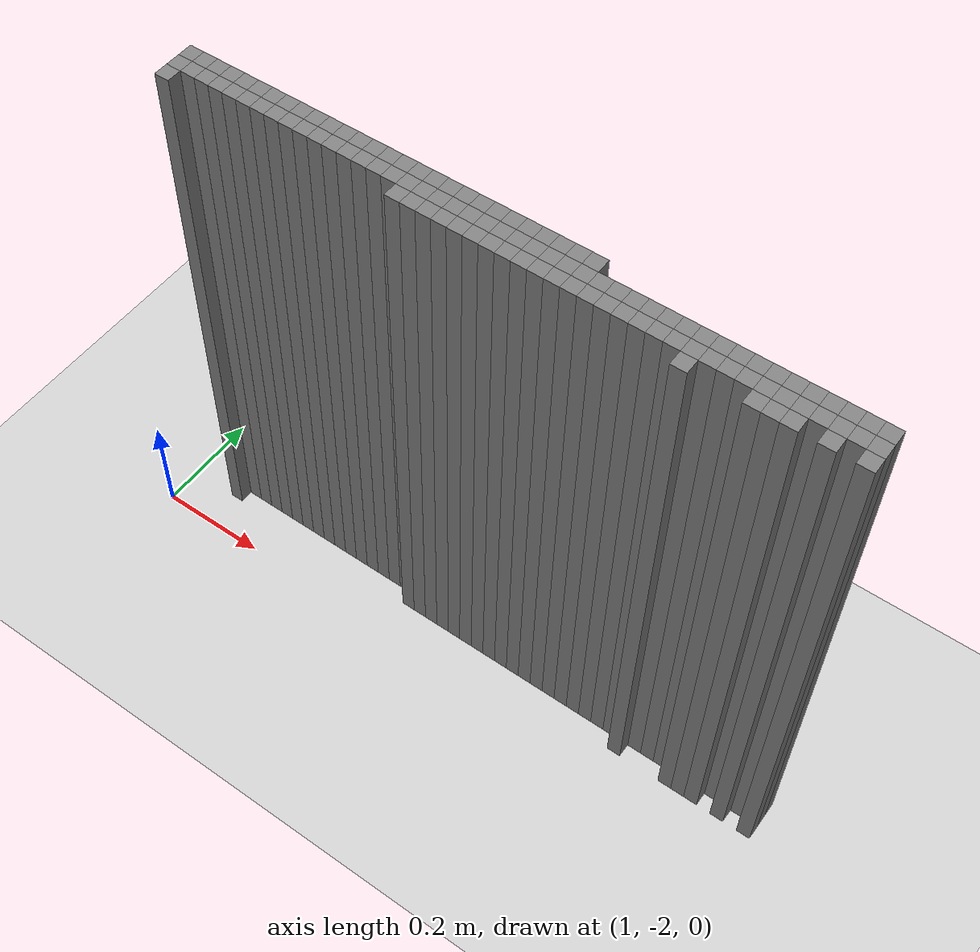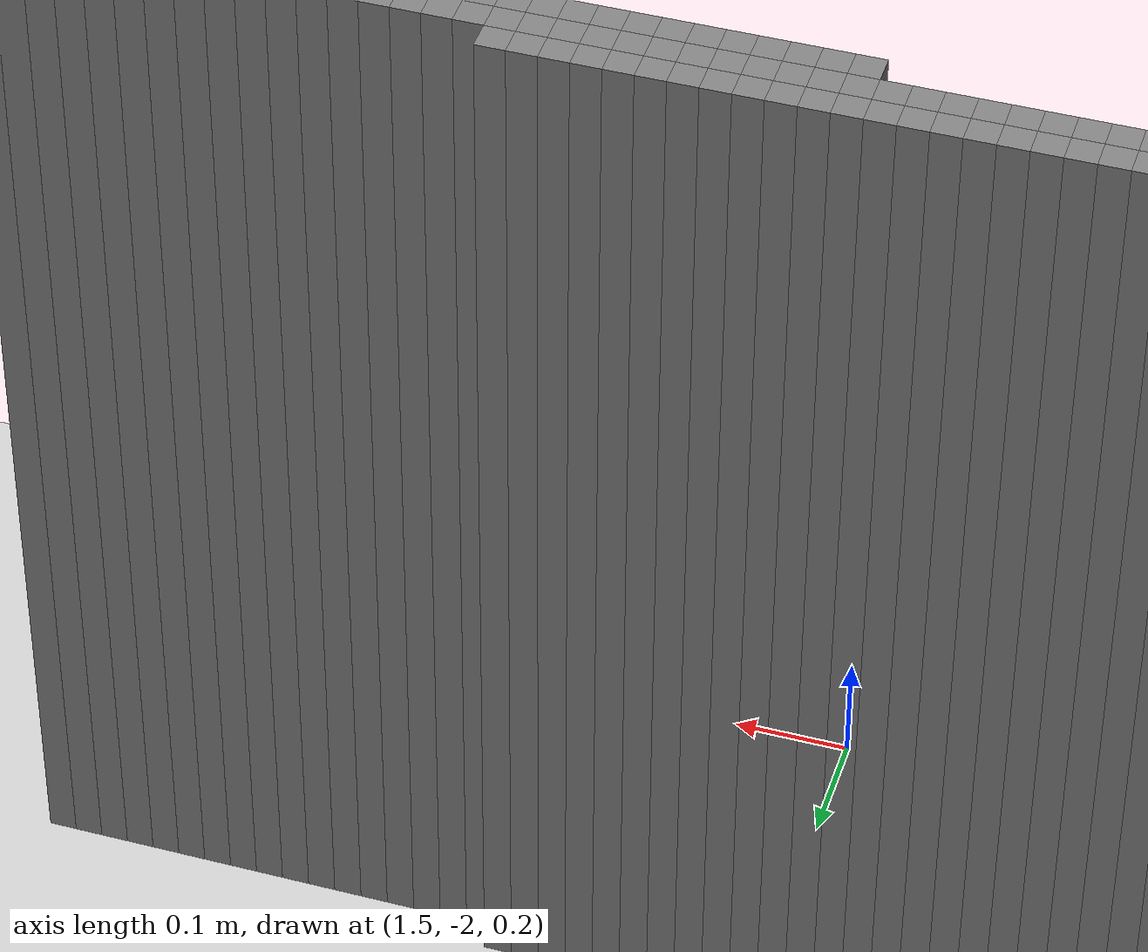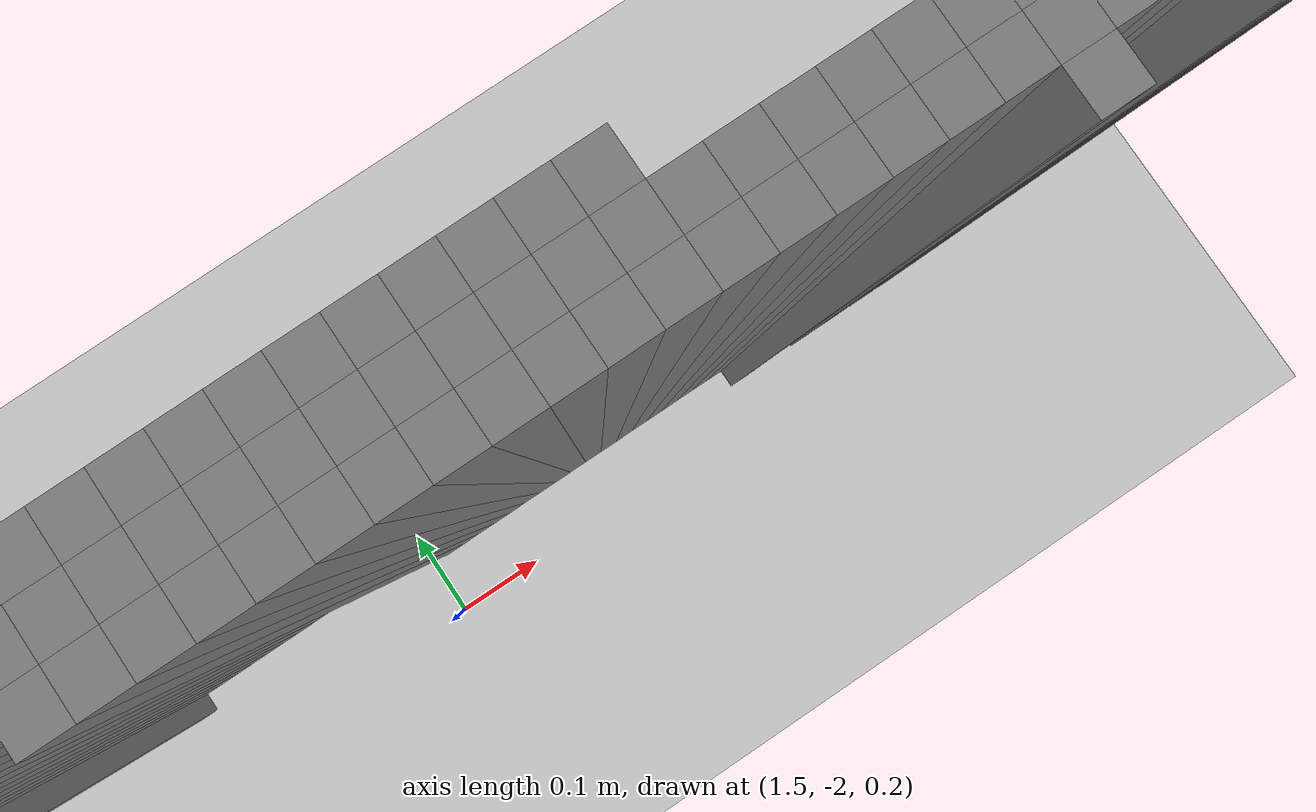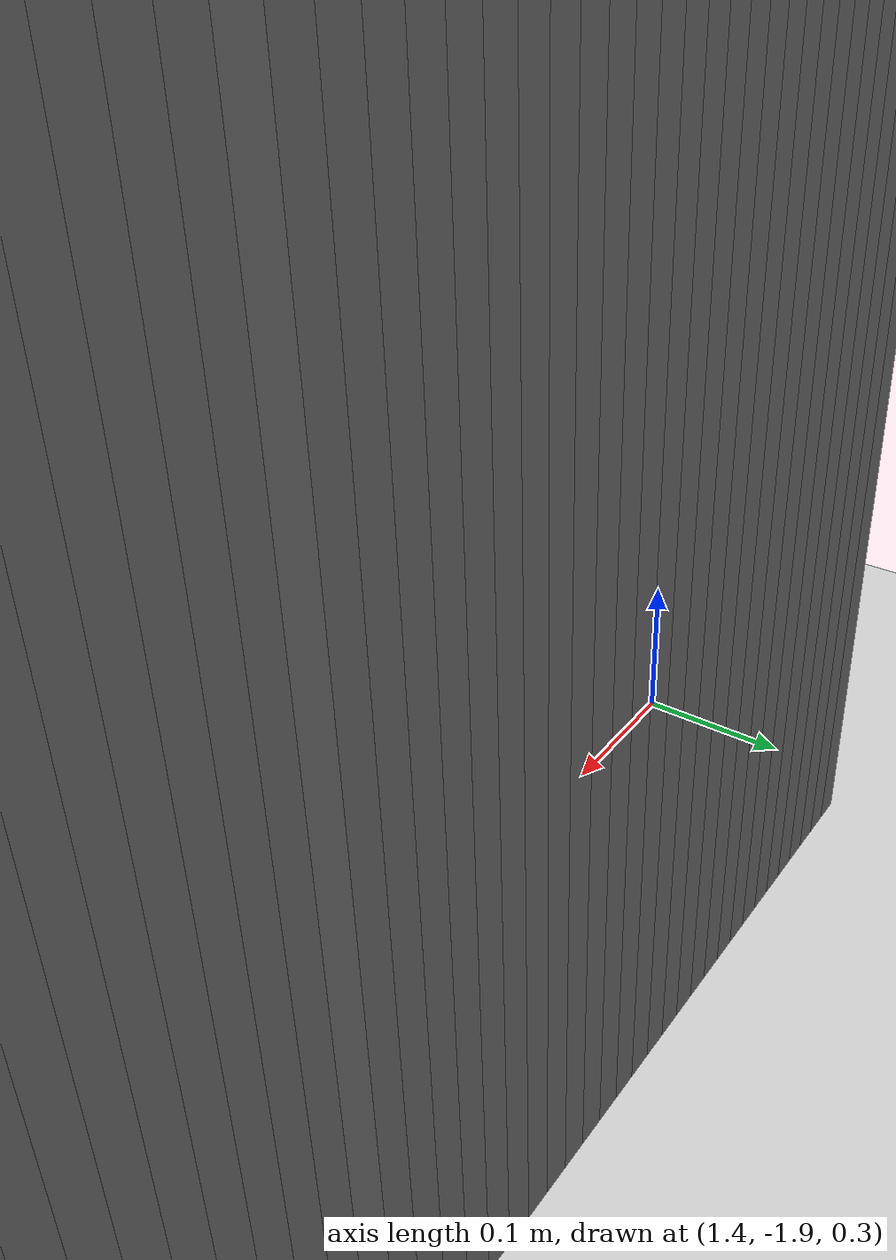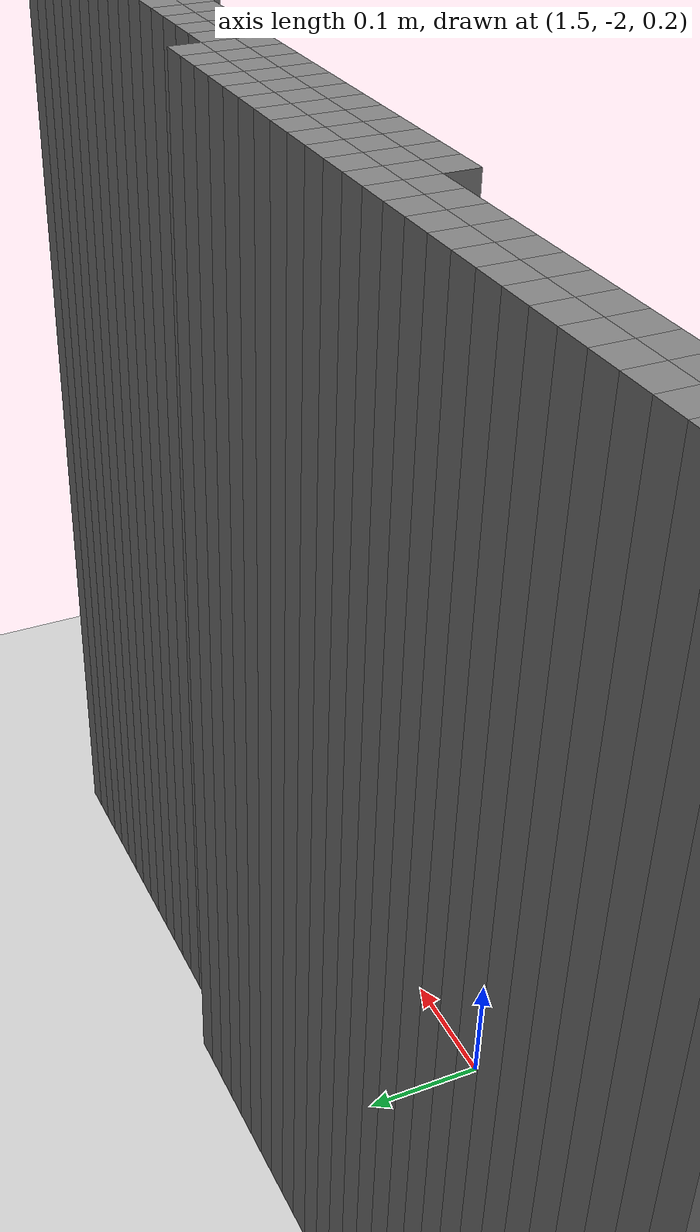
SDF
<sdf version="1.6">
 <world name="map_world">
  <include><uri>model://ground_plane</uri></include>
  <include><uri>model://sun</uri></include>
  <model name="obs_137_124">
   <static>true</static>
   <link name="link">
    <collision name="collision"><geometry><box><size>0.025 0.025 1.0</size></box></geometry></collision>
    <visual name="visual">
     <geometry><box><size>0.025 0.025 1.0</size></box></geometry>
     <material><ambient>0.5 0.5 0.5 1</ambient></material>
    </visual>
   </link>
   <pose>1.0987650000000002 -1.869071 0.5 0 0 0</pose>
  </model>
  <model name="obs_138_124">
   <static>true</static>
   <link name="link">
    <collision name="collision"><geometry><box><size>0.025 0.025 1.0</size></box></geometry></collision>
    <visual name="visual">
     <geometry><box><size>0.025 0.025 1.0</size></box></geometry>
     <material><ambient>0.5 0.5 0.5 1</ambient></material>
    </visual>
   </link>
   <pose>1.1237650000000001 -1.869071 0.5 0 0 0</pose>
  </model>
  <model name="obs_139_124">
   <static>true</static>
   <link name="link">
    <collision name="collision"><geometry><box><size>0.025 0.025 1.0</size></box></geometry></collision>
    <visual name="visual">
     <geometry><box><size>0.025 0.025 1.0</size></box></geometry>
     <material><ambient>0.5 0.5 0.5 1</ambient></material>
    </visual>
   </link>
   <pose>1.148765 -1.869071 0.5 0 0 0</pose>
  </model>
  <model name="obs_140_124">
   <static>true</static>
   <link name="link">
    <collision name="collision"><geometry><box><size>0.025 0.025 1.0</size></box></geometry></collision>
    <visual name="visual">
     <geometry><box><size>0.025 0.025 1.0</size></box></geometry>
     <material><ambient>0.5 0.5 0.5 1</ambient></material>
    </visual>
   </link>
   <pose>1.173765 -1.869071 0.5 0 0 0</pose>
  </model>
  <model name="obs_141_124">
   <static>true</static>
   <link name="link">
    <collision name="collision"><geometry><box><size>0.025 0.025 1.0</size></box></geometry></collision>
    <visual name="visual">
     <geometry><box><size>0.025 0.025 1.0</size></box></geometry>
     <material><ambient>0.5 0.5 0.5 1</ambient></material>
    </visual>
   </link>
   <pose>1.1987650000000003 -1.869071 0.5 0 0 0</pose>
  </model>
  <model name="obs_142_124">
   <static>true</static>
   <link name="link">
    <collision name="collision"><geometry><box><size>0.025 0.025 1.0</size></box></geometry></collision>
    <visual name="visual">
     <geometry><box><size>0.025 0.025 1.0</size></box></geometry>
     <material><ambient>0.5 0.5 0.5 1</ambient></material>
    </visual>
   </link>
   <pose>1.2237650000000002 -1.869071 0.5 0 0 0</pose>
  </model>
  <model name="obs_143_124">
   <static>true</static>
   <link name="link">
    <collision name="collision"><geometry><box><size>0.025 0.025 1.0</size></box></geometry></collision>
    <visual name="visual">
     <geometry><box><size>0.025 0.025 1.0</size></box></geometry>
     <material><ambient>0.5 0.5 0.5 1</ambient></material>
    </visual>
   </link>
   <pose>1.2487650000000001 -1.869071 0.5 0 0 0</pose>
  </model>
  <model name="obs_144_124">
   <static>true</static>
   <link name="link">
    <collision name="collision"><geometry><box><size>0.025 0.025 1.0</size></box></geometry></collision>
    <visual name="visual">
     <geometry><box><size>0.025 0.025 1.0</size></box></geometry>
     <material><ambient>0.5 0.5 0.5 1</ambient></material>
    </visual>
   </link>
   <pose>1.273765 -1.869071 0.5 0 0 0</pose>
  </model>
  <model name="obs_145_124">
   <static>true</static>
   <link name="link">
    <collision name="collision"><geometry><box><size>0.025 0.025 1.0</size></box></geometry></collision>
    <visual name="visual">
     <geometry><box><size>0.025 0.025 1.0</size></box></geometry>
     <material><ambient>0.5 0.5 0.5 1</ambient></material>
    </visual>
   </link>
   <pose>1.298765 -1.869071 0.5 0 0 0</pose>
  </model>
  <model name="obs_146_124">
   <static>true</static>
   <link name="link">
    <collision name="collision"><geometry><box><size>0.025 0.025 1.0</size></box></geometry></collision>
    <visual name="visual">
     <geometry><box><size>0.025 0.025 1.0</size></box></geometry>
     <material><ambient>0.5 0.5 0.5 1</ambient></material>
    </visual>
   </link>
   <pose>1.3237650000000003 -1.869071 0.5 0 0 0</pose>
  </model>
  <model name="obs_147_124">
   <static>true</static>
   <link name="link">
    <collision name="collision"><geometry><box><size>0.025 0.025 1.0</size></box></geometry></collision>
    <visual name="visual">
     <geometry><box><size>0.025 0.025 1.0</size></box></geometry>
     <material><ambient>0.5 0.5 0.5 1</ambient></material>
    </visual>
   </link>
   <pose>1.3487650000000002 -1.869071 0.5 0 0 0</pose>
  </model>
  <model name="obs_148_124">
   <static>true</static>
   <link name="link">
    <collision name="collision"><geometry><box><size>0.025 0.025 1.0</size></box></geometry></collision>
    <visual name="visual">
     <geometry><box><size>0.025 0.025 1.0</size></box></geometry>
     <material><ambient>0.5 0.5 0.5 1</ambient></material>
    </visual>
   </link>
   <pose>1.3737650000000001 -1.869071 0.5 0 0 0</pose>
  </model>
  <model name="obs_149_124">
   <static>true</static>
   <link name="link">
    <collision name="collision"><geometry><box><size>0.025 0.025 1.0</size></box></geometry></collision>
    <visual name="visual">
     <geometry><box><size>0.025 0.025 1.0</size></box></geometry>
     <material><ambient>0.5 0.5 0.5 1</ambient></material>
    </visual>
   </link>
   <pose>1.398765 -1.869071 0.5 0 0 0</pose>
  </model>
  <model name="obs_150_124">
   <static>true</static>
   <link name="link">
    <collision name="collision"><geometry><box><size>0.025 0.025 1.0</size></box></geometry></collision>
    <visual name="visual">
     <geometry><box><size>0.025 0.025 1.0</size></box></geometry>
     <material><ambient>0.5 0.5 0.5 1</ambient></material>
    </visual>
   </link>
   <pose>1.423765 -1.869071 0.5 0 0 0</pose>
  </model>
  <model name="obs_151_124">
   <static>true</static>
   <link name="link">
    <collision name="collision"><geometry><box><size>0.025 0.025 1.0</size></box></geometry></collision>
    <visual name="visual">
     <geometry><box><size>0.025 0.025 1.0</size></box></geometry>
     <material><ambient>0.5 0.5 0.5 1</ambient></material>
    </visual>
   </link>
   <pose>1.4487650000000003 -1.869071 0.5 0 0 0</pose>
  </model>
  <model name="obs_152_124">
   <static>true</static>
   <link name="link">
    <collision name="collision"><geometry><box><size>0.025 0.025 1.0</size></box></geometry></collision>
    <visual name="visual">
     <geometry><box><size>0.025 0.025 1.0</size></box></geometry>
     <material><ambient>0.5 0.5 0.5 1</ambient></material>
    </visual>
   </link>
   <pose>1.4737650000000002 -1.869071 0.5 0 0 0</pose>
  </model>
  <model name="obs_153_124">
   <static>true</static>
   <link name="link">
    <collision name="collision"><geometry><box><size>0.025 0.025 1.0</size></box></geometry></collision>
    <visual name="visual">
     <geometry><box><size>0.025 0.025 1.0</size></box></geometry>
     <material><ambient>0.5 0.5 0.5 1</ambient></material>
    </visual>
   </link>
   <pose>1.4987650000000001 -1.869071 0.5 0 0 0</pose>
  </model>
  <model name="obs_154_124">
   <static>true</static>
   <link name="link">
    <collision name="collision"><geometry><box><size>0.025 0.025 1.0</size></box></geometry></collision>
    <visual name="visual">
     <geometry><box><size>0.025 0.025 1.0</size></box></geometry>
     <material><ambient>0.5 0.5 0.5 1</ambient></material>
    </visual>
   </link>
   <pose>1.523765 -1.869071 0.5 0 0 0</pose>
  </model>
  <model name="obs_155_124">
   <static>true</static>
   <link name="link">
    <collision name="collision"><geometry><box><size>0.025 0.025 1.0</size></box></geometry></collision>
    <visual name="visual">
     <geometry><box><size>0.025 0.025 1.0</size></box></geometry>
     <material><ambient>0.5 0.5 0.5 1</ambient></material>
    </visual>
   </link>
   <pose>1.548765 -1.869071 0.5 0 0 0</pose>
  </model>
  <model name="obs_156_124">
   <static>true</static>
   <link name="link">
    <collision name="collision"><geometry><box><size>0.025 0.025 1.0</size></box></geometry></collision>
    <visual name="visual">
     <geometry><box><size>0.025 0.025 1.0</size></box></geometry>
     <material><ambient>0.5 0.5 0.5 1</ambient></material>
    </visual>
   </link>
   <pose>1.5737650000000003 -1.869071 0.5 0 0 0</pose>
  </model>
  <model name="obs_157_124">
   <static>true</static>
   <link name="link">
    <collision name="collision"><geometry><box><size>0.025 0.025 1.0</size></box></geometry></collision>
    <visual name="visual">
     <geometry><box><size>0.025 0.025 1.0</size></box></geometry>
     <material><ambient>0.5 0.5 0.5 1</ambient></material>
    </visual>
   </link>
   <pose>1.5987650000000002 -1.869071 0.5 0 0 0</pose>
  </model>
  <model name="obs_158_124">
   <static>true</static>
   <link name="link">
    <collision name="collision"><geometry><box><size>0.025 0.025 1.0</size></box></geometry></collision>
    <visual name="visual">
     <geometry><box><size>0.025 0.025 1.0</size></box></geometry>
     <material><ambient>0.5 0.5 0.5 1</ambient></material>
    </visual>
   </link>
   <pose>1.6237650000000001 -1.869071 0.5 0 0 0</pose>
  </model>
  <model name="obs_159_124">
   <static>true</static>
   <link name="link">
    <collision name="collision"><geometry><box><size>0.025 0.025 1.0</size></box></geometry></collision>
    <visual name="visual">
     <geometry><box><size>0.025 0.025 1.0</size></box></geometry>
     <material><ambient>0.5 0.5 0.5 1</ambient></material>
    </visual>
   </link>
   <pose>1.648765 -1.869071 0.5 0 0 0</pose>
  </model>
  <model name="obs_160_124">
   <static>true</static>
   <link name="link">
    <collision name="collision"><geometry><box><size>0.025 0.025 1.0</size></box></geometry></collision>
    <visual name="visual">
     <geometry><box><size>0.025 0.025 1.0</size></box></geometry>
     <material><ambient>0.5 0.5 0.5 1</ambient></material>
    </visual>
   </link>
   <pose>1.673765 -1.869071 0.5 0 0 0</pose>
  </model>
  <model name="obs_161_124">
   <static>true</static>
   <link name="link">
    <collision name="collision"><geometry><box><size>0.025 0.025 1.0</size></box></geometry></collision>
    <visual name="visual">
     <geometry><box><size>0.025 0.025 1.0</size></box></geometry>
     <material><ambient>0.5 0.5 0.5 1</ambient></material>
    </visual>
   </link>
   <pose>1.6987650000000003 -1.869071 0.5 0 0 0</pose>
  </model>
  <model name="obs_162_124">
   <static>true</static>
   <link name="link">
    <collision name="collision"><geometry><box><size>0.025 0.025 1.0</size></box></geometry></collision>
    <visual name="visual">
     <geometry><box><size>0.025 0.025 1.0</size></box></geometry>
     <material><ambient>0.5 0.5 0.5 1</ambient></material>
    </visual>
   </link>
   <pose>1.7237649999999998 -1.869071 0.5 0 0 0</pose>
  </model>
  <model name="obs_163_124">
   <static>true</static>
   <link name="link">
    <collision name="collision"><geometry><box><size>0.025 0.025 1.0</size></box></geometry></collision>
    <visual name="visual">
     <geometry><box><size>0.025 0.025 1.0</size></box></geometry>
     <material><ambient>0.5 0.5 0.5 1</ambient></material>
    </visual>
   </link>
   <pose>1.7487650000000001 -1.869071 0.5 0 0 0</pose>
  </model>
  <model name="obs_164_124">
   <static>true</static>
   <link name="link">
    <collision name="collision"><geometry><box><size>0.025 0.025 1.0</size></box></geometry></collision>
    <visual name="visual">
     <geometry><box><size>0.025 0.025 1.0</size></box></geometry>
     <material><ambient>0.5 0.5 0.5 1</ambient></material>
    </visual>
   </link>
   <pose>1.7737650000000005 -1.869071 0.5 0 0 0</pose>
  </model>
  <model name="obs_137_125">
   <static>true</static>
   <link name="link">
    <collision name="collision"><geometry><box><size>0.025 0.025 1.0</size></box></geometry></collision>
    <visual name="visual">
     <geometry><box><size>0.025 0.025 1.0</size></box></geometry>
     <material><ambient>0.5 0.5 0.5 1</ambient></material>
    </visual>
   </link>
   <pose>1.0987650000000002 -1.8940709999999998 0.5 0 0 0</pose>
  </model>
  <model name="obs_138_125">
   <static>true</static>
   <link name="link">
    <collision name="collision"><geometry><box><size>0.025 0.025 1.0</size></box></geometry></collision>
    <visual name="visual">
     <geometry><box><size>0.025 0.025 1.0</size></box></geometry>
     <material><ambient>0.5 0.5 0.5 1</ambient></material>
    </visual>
   </link>
   <pose>1.1237650000000001 -1.8940709999999998 0.5 0 0 0</pose>
  </model>
  <model name="obs_139_125">
   <static>true</static>
   <link name="link">
    <collision name="collision"><geometry><box><size>0.025 0.025 1.0</size></box></geometry></collision>
    <visual name="visual">
     <geometry><box><size>0.025 0.025 1.0</size></box></geometry>
     <material><ambient>0.5 0.5 0.5 1</ambient></material>
    </visual>
   </link>
   <pose>1.148765 -1.8940709999999998 0.5 0 0 0</pose>
  </model>
  <model name="obs_140_125">
   <static>true</static>
   <link name="link">
    <collision name="collision"><geometry><box><size>0.025 0.025 1.0</size></box></geometry></collision>
    <visual name="visual">
     <geometry><box><size>0.025 0.025 1.0</size></box></geometry>
     <material><ambient>0.5 0.5 0.5 1</ambient></material>
    </visual>
   </link>
   <pose>1.173765 -1.8940709999999998 0.5 0 0 0</pose>
  </model>
  <model name="obs_141_125">
   <static>true</static>
   <link name="link">
    <collision name="collision"><geometry><box><size>0.025 0.025 1.0</size></box></geometry></collision>
    <visual name="visual">
     <geometry><box><size>0.025 0.025 1.0</size></box></geometry>
     <material><ambient>0.5 0.5 0.5 1</ambient></material>
    </visual>
   </link>
   <pose>1.1987650000000003 -1.8940709999999998 0.5 0 0 0</pose>
  </model>
  <model name="obs_142_125">
   <static>true</static>
   <link name="link">
    <collision name="collision"><geometry><box><size>0.025 0.025 1.0</size></box></geometry></collision>
    <visual name="visual">
     <geometry><box><size>0.025 0.025 1.0</size></box></geometry>
     <material><ambient>0.5 0.5 0.5 1</ambient></material>
    </visual>
   </link>
   <pose>1.2237650000000002 -1.8940709999999998 0.5 0 0 0</pose>
  </model>
  <model name="obs_143_125">
   <static>true</static>
   <link name="link">
    <collision name="collision"><geometry><box><size>0.025 0.025 1.0</size></box></geometry></collision>
    <visual name="visual">
     <geometry><box><size>0.025 0.025 1.0</size></box></geometry>
     <material><ambient>0.5 0.5 0.5 1</ambient></material>
    </visual>
   </link>
   <pose>1.2487650000000001 -1.8940709999999998 0.5 0 0 0</pose>
  </model>
  <model name="obs_144_125">
   <static>true</static>
   <link name="link">
    <collision name="collision"><geometry><box><size>0.025 0.025 1.0</size></box></geometry></collision>
    <visual name="visual">
     <geometry><box><size>0.025 0.025 1.0</size></box></geometry>
     <material><ambient>0.5 0.5 0.5 1</ambient></material>
    </visual>
   </link>
   <pose>1.273765 -1.8940709999999998 0.5 0 0 0</pose>
  </model>
  <model name="obs_145_125">
   <static>true</static>
   <link name="link">
    <collision name="collision"><geometry><box><size>0.025 0.025 1.0</size></box></geometry></collision>
    <visual name="visual">
     <geometry><box><size>0.025 0.025 1.0</size></box></geometry>
     <material><ambient>0.5 0.5 0.5 1</ambient></material>
    </visual>
   </link>
   <pose>1.298765 -1.8940709999999998 0.5 0 0 0</pose>
  </model>
  <model name="obs_146_125">
   <static>true</static>
   <link name="link">
    <collision name="collision"><geometry><box><size>0.025 0.025 1.0</size></box></geometry></collision>
    <visual name="visual">
     <geometry><box><size>0.025 0.025 1.0</size></box></geometry>
     <material><ambient>0.5 0.5 0.5 1</ambient></material>
    </visual>
   </link>
   <pose>1.3237650000000003 -1.8940709999999998 0.5 0 0 0</pose>
  </model>
  <model name="obs_147_125">
   <static>true</static>
   <link name="link">
    <collision name="collision"><geometry><box><size>0.025 0.025 1.0</size></box></geometry></collision>
    <visual name="visual">
     <geometry><box><size>0.025 0.025 1.0</size></box></geometry>
     <material><ambient>0.5 0.5 0.5 1</ambient></material>
    </visual>
   </link>
   <pose>1.3487650000000002 -1.8940709999999998 0.5 0 0 0</pose>
  </model>
  <model name="obs_148_125">
   <static>true</static>
   <link name="link">
    <collision name="collision"><geometry><box><size>0.025 0.025 1.0</size></box></geometry></collision>
    <visual name="visual">
     <geometry><box><size>0.025 0.025 1.0</size></box></geometry>
     <material><ambient>0.5 0.5 0.5 1</ambient></material>
    </visual>
   </link>
   <pose>1.3737650000000001 -1.8940709999999998 0.5 0 0 0</pose>
  </model>
  <model name="obs_149_125">
   <static>true</static>
   <link name="link">
    <collision name="collision"><geometry><box><size>0.025 0.025 1.0</size></box></geometry></collision>
    <visual name="visual">
     <geometry><box><size>0.025 0.025 1.0</size></box></geometry>
     <material><ambient>0.5 0.5 0.5 1</ambient></material>
    </visual>
   </link>
   <pose>1.398765 -1.8940709999999998 0.5 0 0 0</pose>
  </model>
  <model name="obs_150_125">
   <static>true</static>
   <link name="link">
    <collision name="collision"><geometry><box><size>0.025 0.025 1.0</size></box></geometry></collision>
    <visual name="visual">
     <geometry><box><size>0.025 0.025 1.0</size></box></geometry>
     <material><ambient>0.5 0.5 0.5 1</ambient></material>
    </visual>
   </link>
   <pose>1.423765 -1.8940709999999998 0.5 0 0 0</pose>
  </model>
  <model name="obs_151_125">
   <static>true</static>
   <link name="link">
    <collision name="collision"><geometry><box><size>0.025 0.025 1.0</size></box></geometry></collision>
    <visual name="visual">
     <geometry><box><size>0.025 0.025 1.0</size></box></geometry>
     <material><ambient>0.5 0.5 0.5 1</ambient></material>
    </visual>
   </link>
   <pose>1.4487650000000003 -1.8940709999999998 0.5 0 0 0</pose>
  </model>
  <model name="obs_152_125">
   <static>true</static>
   <link name="link">
    <collision name="collision"><geometry><box><size>0.025 0.025 1.0</size></box></geometry></collision>
    <visual name="visual">
     <geometry><box><size>0.025 0.025 1.0</size></box></geometry>
     <material><ambient>0.5 0.5 0.5 1</ambient></material>
    </visual>
   </link>
   <pose>1.4737650000000002 -1.8940709999999998 0.5 0 0 0</pose>
  </model>
  <model name="obs_153_125">
   <static>true</static>
   <link name="link">
    <collision name="collision"><geometry><box><size>0.025 0.025 1.0</size></box></geometry></collision>
    <visual name="visual">
     <geometry><box><size>0.025 0.025 1.0</size></box></geometry>
     <material><ambient>0.5 0.5 0.5 1</ambient></material>
    </visual>
   </link>
   <pose>1.4987650000000001 -1.8940709999999998 0.5 0 0 0</pose>
  </model>
  <model name="obs_154_125">
   <static>true</static>
   <link name="link">
    <collision name="collision"><geometry><box><size>0.025 0.025 1.0</size></box></geometry></collision>
    <visual name="visual">
     <geometry><box><size>0.025 0.025 1.0</size></box></geometry>
     <material><ambient>0.5 0.5 0.5 1</ambient></material>
    </visual>
   </link>
   <pose>1.523765 -1.8940709999999998 0.5 0 0 0</pose>
  </model>
  <model name="obs_155_125">
   <static>true</static>
   <link name="link">
    <collision name="collision"><geometry><box><size>0.025 0.025 1.0</size></box></geometry></collision>
    <visual name="visual">
     <geometry><box><size>0.025 0.025 1.0</size></box></geometry>
     <material><ambient>0.5 0.5 0.5 1</ambient></material>
    </visual>
   </link>
   <pose>1.548765 -1.8940709999999998 0.5 0 0 0</pose>
  </model>
  <model name="obs_156_125">
   <static>true</static>
   <link name="link">
    <collision name="collision"><geometry><box><size>0.025 0.025 1.0</size></box></geometry></collision>
    <visual name="visual">
     <geometry><box><size>0.025 0.025 1.0</size></box></geometry>
     <material><ambient>0.5 0.5 0.5 1</ambient></material>
    </visual>
   </link>
   <pose>1.5737650000000003 -1.8940709999999998 0.5 0 0 0</pose>
  </model>
  <model name="obs_157_125">
   <static>true</static>
   <link name="link">
    <collision name="collision"><geometry><box><size>0.025 0.025 1.0</size></box></geometry></collision>
    <visual name="visual">
     <geometry><box><size>0.025 0.025 1.0</size></box></geometry>
     <material><ambient>0.5 0.5 0.5 1</ambient></material>
    </visual>
   </link>
   <pose>1.5987650000000002 -1.8940709999999998 0.5 0 0 0</pose>
  </model>
  <model name="obs_158_125">
   <static>true</static>
   <link name="link">
    <collision name="collision"><geometry><box><size>0.025 0.025 1.0</size></box></geometry></collision>
    <visual name="visual">
     <geometry><box><size>0.025 0.025 1.0</size></box></geometry>
     <material><ambient>0.5 0.5 0.5 1</ambient></material>
    </visual>
   </link>
   <pose>1.6237650000000001 -1.8940709999999998 0.5 0 0 0</pose>
  </model>
  <model name="obs_159_125">
   <static>true</static>
   <link name="link">
    <collision name="collision"><geometry><box><size>0.025 0.025 1.0</size></box></geometry></collision>
    <visual name="visual">
     <geometry><box><size>0.025 0.025 1.0</size></box></geometry>
     <material><ambient>0.5 0.5 0.5 1</ambient></material>
    </visual>
   </link>
   <pose>1.648765 -1.8940709999999998 0.5 0 0 0</pose>
  </model>
  <model name="obs_160_125">
   <static>true</static>
   <link name="link">
    <collision name="collision"><geometry><box><size>0.025 0.025 1.0</size></box></geometry></collision>
    <visual name="visual">
     <geometry><box><size>0.025 0.025 1.0</size></box></geometry>
     <material><ambient>0.5 0.5 0.5 1</ambient></material>
    </visual>
   </link>
   <pose>1.673765 -1.8940709999999998 0.5 0 0 0</pose>
  </model>
  <model name="obs_161_125">
   <static>true</static>
   <link name="link">
    <collision name="collision"><geometry><box><size>0.025 0.025 1.0</size></box></geometry></collision>
    <visual name="visual">
     <geometry><box><size>0.025 0.025 1.0</size></box></geometry>
     <material><ambient>0.5 0.5 0.5 1</ambient></material>
    </visual>
   </link>
   <pose>1.6987650000000003 -1.8940709999999998 0.5 0 0 0</pose>
  </model>
  <model name="obs_162_125">
   <static>true</static>
   <link name="link">
    <collision name="collision"><geometry><box><size>0.025 0.025 1.0</size></box></geometry></collision>
    <visual name="visual">
     <geometry><box><size>0.025 0.025 1.0</size></box></geometry>
     <material><ambient>0.5 0.5 0.5 1</ambient></material>
    </visual>
   </link>
   <pose>1.7237649999999998 -1.8940709999999998 0.5 0 0 0</pose>
  </model>
  <model name="obs_163_125">
   <static>true</static>
   <link name="link">
    <collision name="collision"><geometry><box><size>0.025 0.025 1.0</size></box></geometry></collision>
    <visual name="visual">
     <geometry><box><size>0.025 0.025 1.0</size></box></geometry>
     <material><ambient>0.5 0.5 0.5 1</ambient></material>
    </visual>
   </link>
   <pose>1.7487650000000001 -1.8940709999999998 0.5 0 0 0</pose>
  </model>
  <model name="obs_164_125">
   <static>true</static>
   <link name="link">
    <collision name="collision"><geometry><box><size>0.025 0.025 1.0</size></box></geometry></collision>
    <visual name="visual">
     <geometry><box><size>0.025 0.025 1.0</size></box></geometry>
     <material><ambient>0.5 0.5 0.5 1</ambient></material>
    </visual>
   </link>
   <pose>1.7737650000000005 -1.8940709999999998 0.5 0 0 0</pose>
  </model>
  <model name="obs_165_125">
   <static>true</static>
   <link name="link">
    <collision name="collision"><geometry><box><size>0.025 0.025 1.0</size></box></geometry></collision>
    <visual name="visual">
     <geometry><box><size>0.025 0.025 1.0</size></box></geometry>
     <material><ambient>0.5 0.5 0.5 1</ambient></material>
    </visual>
   </link>
   <pose>1.798765 -1.8940709999999998 0.5 0 0 0</pose>
  </model>
  <model name="obs_166_125">
   <static>true</static>
   <link name="link">
    <collision name="collision"><geometry><box><size>0.025 0.025 1.0</size></box></geometry></collision>
    <visual name="visual">
     <geometry><box><size>0.025 0.025 1.0</size></box></geometry>
     <material><ambient>0.5 0.5 0.5 1</ambient></material>
    </visual>
   </link>
   <pose>1.8237650000000003 -1.8940709999999998 0.5 0 0 0</pose>
  </model>
  <model name="obs_167_125">
   <static>true</static>
   <link name="link">
    <collision name="collision"><geometry><box><size>0.025 0.025 1.0</size></box></geometry></collision>
    <visual name="visual">
     <geometry><box><size>0.025 0.025 1.0</size></box></geometry>
     <material><ambient>0.5 0.5 0.5 1</ambient></material>
    </visual>
   </link>
   <pose>1.8487649999999998 -1.8940709999999998 0.5 0 0 0</pose>
  </model>
  <model name="obs_168_125">
   <static>true</static>
   <link name="link">
    <collision name="collision"><geometry><box><size>0.025 0.025 1.0</size></box></geometry></collision>
    <visual name="visual">
     <geometry><box><size>0.025 0.025 1.0</size></box></geometry>
     <material><ambient>0.5 0.5 0.5 1</ambient></material>
    </visual>
   </link>
   <pose>1.8737650000000001 -1.8940709999999998 0.5 0 0 0</pose>
  </model>
  <model name="obs_169_125">
   <static>true</static>
   <link name="link">
    <collision name="collision"><geometry><box><size>0.025 0.025 1.0</size></box></geometry></collision>
    <visual name="visual">
     <geometry><box><size>0.025 0.025 1.0</size></box></geometry>
     <material><ambient>0.5 0.5 0.5 1</ambient></material>
    </visual>
   </link>
   <pose>1.8987650000000005 -1.8940709999999998 0.5 0 0 0</pose>
  </model>
  <model name="obs_170_125">
   <static>true</static>
   <link name="link">
    <collision name="collision"><geometry><box><size>0.025 0.025 1.0</size></box></geometry></collision>
    <visual name="visual">
     <geometry><box><size>0.025 0.025 1.0</size></box></geometry>
     <material><ambient>0.5 0.5 0.5 1</ambient></material>
    </visual>
   </link>
   <pose>1.923765 -1.8940709999999998 0.5 0 0 0</pose>
  </model>
  <model name="obs_171_125">
   <static>true</static>
   <link name="link">
    <collision name="collision"><geometry><box><size>0.025 0.025 1.0</size></box></geometry></collision>
    <visual name="visual">
     <geometry><box><size>0.025 0.025 1.0</size></box></geometry>
     <material><ambient>0.5 0.5 0.5 1</ambient></material>
    </visual>
   </link>
   <pose>1.9487650000000003 -1.8940709999999998 0.5 0 0 0</pose>
  </model>
  <model name="obs_172_125">
   <static>true</static>
   <link name="link">
    <collision name="collision"><geometry><box><size>0.025 0.025 1.0</size></box></geometry></collision>
    <visual name="visual">
     <geometry><box><size>0.025 0.025 1.0</size></box></geometry>
     <material><ambient>0.5 0.5 0.5 1</ambient></material>
    </visual>
   </link>
   <pose>1.9737649999999998 -1.8940709999999998 0.5 0 0 0</pose>
  </model>
  <model name="obs_173_125">
   <static>true</static>
   <link name="link">
    <collision name="collision"><geometry><box><size>0.025 0.025 1.0</size></box></geometry></collision>
    <visual name="visual">
     <geometry><box><size>0.025 0.025 1.0</size></box></geometry>
     <material><ambient>0.5 0.5 0.5 1</ambient></material>
    </visual>
   </link>
   <pose>1.9987650000000001 -1.8940709999999998 0.5 0 0 0</pose>
  </model>
  <model name="obs_174_125">
   <static>true</static>
   <link name="link">
    <collision name="collision"><geometry><box><size>0.025 0.025 1.0</size></box></geometry></collision>
    <visual name="visual">
     <geometry><box><size>0.025 0.025 1.0</size></box></geometry>
     <material><ambient>0.5 0.5 0.5 1</ambient></material>
    </visual>
   </link>
   <pose>2.0237650000000005 -1.8940709999999998 0.5 0 0 0</pose>
  </model>
  <model name="obs_175_125">
   <static>true</static>
   <link name="link">
    <collision name="collision"><geometry><box><size>0.025 0.025 1.0</size></box></geometry></collision>
    <visual name="visual">
     <geometry><box><size>0.025 0.025 1.0</size></box></geometry>
     <material><ambient>0.5 0.5 0.5 1</ambient></material>
    </visual>
   </link>
   <pose>2.048765 -1.8940709999999998 0.5 0 0 0</pose>
  </model>
  <model name="obs_176_125">
   <static>true</static>
   <link name="link">
    <collision name="collision"><geometry><box><size>0.025 0.025 1.0</size></box></geometry></collision>
    <visual name="visual">
     <geometry><box><size>0.025 0.025 1.0</size></box></geometry>
     <material><ambient>0.5 0.5 0.5 1</ambient></material>
    </visual>
   </link>
   <pose>2.0737650000000003 -1.8940709999999998 0.5 0 0 0</pose>
  </model>
  <model name="obs_177_125">
   <static>true</static>
   <link name="link">
    <collision name="collision"><geometry><box><size>0.025 0.025 1.0</size></box></geometry></collision>
    <visual name="visual">
     <geometry><box><size>0.025 0.025 1.0</size></box></geometry>
     <material><ambient>0.5 0.5 0.5 1</ambient></material>
    </visual>
   </link>
   <pose>2.0987649999999998 -1.8940709999999998 0.5 0 0 0</pose>
  </model>
  <model name="obs_178_125">
   <static>true</static>
   <link name="link">
    <collision name="collision"><geometry><box><size>0.025 0.025 1.0</size></box></geometry></collision>
    <visual name="visual">
     <geometry><box><size>0.025 0.025 1.0</size></box></geometry>
     <material><ambient>0.5 0.5 0.5 1</ambient></material>
    </visual>
   </link>
   <pose>2.123765 -1.8940709999999998 0.5 0 0 0</pose>
  </model>
  <model name="obs_179_125">
   <static>true</static>
   <link name="link">
    <collision name="collision"><geometry><box><size>0.025 0.025 1.0</size></box></geometry></collision>
    <visual name="visual">
     <geometry><box><size>0.025 0.025 1.0</size></box></geometry>
     <material><ambient>0.5 0.5 0.5 1</ambient></material>
    </visual>
   </link>
   <pose>2.1487650000000005 -1.8940709999999998 0.5 0 0 0</pose>
  </model>
  <model name="obs_180_125">
   <static>true</static>
   <link name="link">
    <collision name="collision"><geometry><box><size>0.025 0.025 1.0</size></box></geometry></collision>
    <visual name="visual">
     <geometry><box><size>0.025 0.025 1.0</size></box></geometry>
     <material><ambient>0.5 0.5 0.5 1</ambient></material>
    </visual>
   </link>
   <pose>2.173765 -1.8940709999999998 0.5 0 0 0</pose>
  </model>
  <model name="obs_181_125">
   <static>true</static>
   <link name="link">
    <collision name="collision"><geometry><box><size>0.025 0.025 1.0</size></box></geometry></collision>
    <visual name="visual">
     <geometry><box><size>0.025 0.025 1.0</size></box></geometry>
     <material><ambient>0.5 0.5 0.5 1</ambient></material>
    </visual>
   </link>
   <pose>2.1987650000000003 -1.8940709999999998 0.5 0 0 0</pose>
  </model>
  <model name="obs_137_126">
   <static>true</static>
   <link name="link">
    <collision name="collision"><geometry><box><size>0.025 0.025 1.0</size></box></geometry></collision>
    <visual name="visual">
     <geometry><box><size>0.025 0.025 1.0</size></box></geometry>
     <material><ambient>0.5 0.5 0.5 1</ambient></material>
    </visual>
   </link>
   <pose>1.0987650000000002 -1.919071 0.5 0 0 0</pose>
  </model>
  <model name="obs_153_126">
   <static>true</static>
   <link name="link">
    <collision name="collision"><geometry><box><size>0.025 0.025 1.0</size></box></geometry></collision>
    <visual name="visual">
     <geometry><box><size>0.025 0.025 1.0</size></box></geometry>
     <material><ambient>0.5 0.5 0.5 1</ambient></material>
    </visual>
   </link>
   <pose>1.4987650000000001 -1.919071 0.5 0 0 0</pose>
  </model>
  <model name="obs_154_126">
   <static>true</static>
   <link name="link">
    <collision name="collision"><geometry><box><size>0.025 0.025 1.0</size></box></geometry></collision>
    <visual name="visual">
     <geometry><box><size>0.025 0.025 1.0</size></box></geometry>
     <material><ambient>0.5 0.5 0.5 1</ambient></material>
    </visual>
   </link>
   <pose>1.523765 -1.919071 0.5 0 0 0</pose>
  </model>
  <model name="obs_155_126">
   <static>true</static>
   <link name="link">
    <collision name="collision"><geometry><box><size>0.025 0.025 1.0</size></box></geometry></collision>
    <visual name="visual">
     <geometry><box><size>0.025 0.025 1.0</size></box></geometry>
     <material><ambient>0.5 0.5 0.5 1</ambient></material>
    </visual>
   </link>
   <pose>1.548765 -1.919071 0.5 0 0 0</pose>
  </model>
  <model name="obs_156_126">
   <static>true</static>
   <link name="link">
    <collision name="collision"><geometry><box><size>0.025 0.025 1.0</size></box></geometry></collision>
    <visual name="visual">
     <geometry><box><size>0.025 0.025 1.0</size></box></geometry>
     <material><ambient>0.5 0.5 0.5 1</ambient></material>
    </visual>
   </link>
   <pose>1.5737650000000003 -1.919071 0.5 0 0 0</pose>
  </model>
  <model name="obs_157_126">
   <static>true</static>
   <link name="link">
    <collision name="collision"><geometry><box><size>0.025 0.025 1.0</size></box></geometry></collision>
    <visual name="visual">
     <geometry><box><size>0.025 0.025 1.0</size></box></geometry>
     <material><ambient>0.5 0.5 0.5 1</ambient></material>
    </visual>
   </link>
   <pose>1.5987650000000002 -1.919071 0.5 0 0 0</pose>
  </model>
  <model name="obs_158_126">
   <static>true</static>
   <link name="link">
    <collision name="collision"><geometry><box><size>0.025 0.025 1.0</size></box></geometry></collision>
    <visual name="visual">
     <geometry><box><size>0.025 0.025 1.0</size></box></geometry>
     <material><ambient>0.5 0.5 0.5 1</ambient></material>
    </visual>
   </link>
   <pose>1.6237650000000001 -1.919071 0.5 0 0 0</pose>
  </model>
  <model name="obs_159_126">
   <static>true</static>
   <link name="link">
    <collision name="collision"><geometry><box><size>0.025 0.025 1.0</size></box></geometry></collision>
    <visual name="visual">
     <geometry><box><size>0.025 0.025 1.0</size></box></geometry>
     <material><ambient>0.5 0.5 0.5 1</ambient></material>
    </visual>
   </link>
   <pose>1.648765 -1.919071 0.5 0 0 0</pose>
  </model>
  <model name="obs_160_126">
   <static>true</static>
   <link name="link">
    <collision name="collision"><geometry><box><size>0.025 0.025 1.0</size></box></geometry></collision>
    <visual name="visual">
     <geometry><box><size>0.025 0.025 1.0</size></box></geometry>
     <material><ambient>0.5 0.5 0.5 1</ambient></material>
    </visual>
   </link>
   <pose>1.673765 -1.919071 0.5 0 0 0</pose>
  </model>
  <model name="obs_161_126">
   <static>true</static>
   <link name="link">
    <collision name="collision"><geometry><box><size>0.025 0.025 1.0</size></box></geometry></collision>
    <visual name="visual">
     <geometry><box><size>0.025 0.025 1.0</size></box></geometry>
     <material><ambient>0.5 0.5 0.5 1</ambient></material>
    </visual>
   </link>
   <pose>1.6987650000000003 -1.919071 0.5 0 0 0</pose>
  </model>
  <model name="obs_162_126">
   <static>true</static>
   <link name="link">
    <collision name="collision"><geometry><box><size>0.025 0.025 1.0</size></box></geometry></collision>
    <visual name="visual">
     <geometry><box><size>0.025 0.025 1.0</size></box></geometry>
     <material><ambient>0.5 0.5 0.5 1</ambient></material>
    </visual>
   </link>
   <pose>1.7237649999999998 -1.919071 0.5 0 0 0</pose>
  </model>
  <model name="obs_163_126">
   <static>true</static>
   <link name="link">
    <collision name="collision"><geometry><box><size>0.025 0.025 1.0</size></box></geometry></collision>
    <visual name="visual">
     <geometry><box><size>0.025 0.025 1.0</size></box></geometry>
     <material><ambient>0.5 0.5 0.5 1</ambient></material>
    </visual>
   </link>
   <pose>1.7487650000000001 -1.919071 0.5 0 0 0</pose>
  </model>
  <model name="obs_164_126">
   <static>true</static>
   <link name="link">
    <collision name="collision"><geometry><box><size>0.025 0.025 1.0</size></box></geometry></collision>
    <visual name="visual">
     <geometry><box><size>0.025 0.025 1.0</size></box></geometry>
     <material><ambient>0.5 0.5 0.5 1</ambient></material>
    </visual>
   </link>
   <pose>1.7737650000000005 -1.919071 0.5 0 0 0</pose>
  </model>
  <model name="obs_165_126">
   <static>true</static>
   <link name="link">
    <collision name="collision"><geometry><box><size>0.025 0.025 1.0</size></box></geometry></collision>
    <visual name="visual">
     <geometry><box><size>0.025 0.025 1.0</size></box></geometry>
     <material><ambient>0.5 0.5 0.5 1</ambient></material>
    </visual>
   </link>
   <pose>1.798765 -1.919071 0.5 0 0 0</pose>
  </model>
  <model name="obs_166_126">
   <static>true</static>
   <link name="link">
    <collision name="collision"><geometry><box><size>0.025 0.025 1.0</size></box></geometry></collision>
    <visual name="visual">
     <geometry><box><size>0.025 0.025 1.0</size></box></geometry>
     <material><ambient>0.5 0.5 0.5 1</ambient></material>
    </visual>
   </link>
   <pose>1.8237650000000003 -1.919071 0.5 0 0 0</pose>
  </model>
  <model name="obs_167_126">
   <static>true</static>
   <link name="link">
    <collision name="collision"><geometry><box><size>0.025 0.025 1.0</size></box></geometry></collision>
    <visual name="visual">
     <geometry><box><size>0.025 0.025 1.0</size></box></geometry>
     <material><ambient>0.5 0.5 0.5 1</ambient></material>
    </visual>
   </link>
   <pose>1.8487649999999998 -1.919071 0.5 0 0 0</pose>
  </model>
  <model name="obs_168_126">
   <static>true</static>
   <link name="link">
    <collision name="collision"><geometry><box><size>0.025 0.025 1.0</size></box></geometry></collision>
    <visual name="visual">
     <geometry><box><size>0.025 0.025 1.0</size></box></geometry>
     <material><ambient>0.5 0.5 0.5 1</ambient></material>
    </visual>
   </link>
   <pose>1.8737650000000001 -1.919071 0.5 0 0 0</pose>
  </model>
  <model name="obs_169_126">
   <static>true</static>
   <link name="link">
    <collision name="collision"><geometry><box><size>0.025 0.025 1.0</size></box></geometry></collision>
    <visual name="visual">
     <geometry><box><size>0.025 0.025 1.0</size></box></geometry>
     <material><ambient>0.5 0.5 0.5 1</ambient></material>
    </visual>
   </link>
   <pose>1.8987650000000005 -1.919071 0.5 0 0 0</pose>
  </model>
  <model name="obs_170_126">
   <static>true</static>
   <link name="link">
    <collision name="collision"><geometry><box><size>0.025 0.025 1.0</size></box></geometry></collision>
    <visual name="visual">
     <geometry><box><size>0.025 0.025 1.0</size></box></geometry>
     <material><ambient>0.5 0.5 0.5 1</ambient></material>
    </visual>
   </link>
   <pose>1.923765 -1.919071 0.5 0 0 0</pose>
  </model>
  <model name="obs_171_126">
   <static>true</static>
   <link name="link">
    <collision name="collision"><geometry><box><size>0.025 0.025 1.0</size></box></geometry></collision>
    <visual name="visual">
     <geometry><box><size>0.025 0.025 1.0</size></box></geometry>
     <material><ambient>0.5 0.5 0.5 1</ambient></material>
    </visual>
   </link>
   <pose>1.9487650000000003 -1.919071 0.5 0 0 0</pose>
  </model>
  <model name="obs_172_126">
   <static>true</static>
   <link name="link">
    <collision name="collision"><geometry><box><size>0.025 0.025 1.0</size></box></geometry></collision>
    <visual name="visual">
     <geometry><box><size>0.025 0.025 1.0</size></box></geometry>
     <material><ambient>0.5 0.5 0.5 1</ambient></material>
    </visual>
   </link>
   <pose>1.9737649999999998 -1.919071 0.5 0 0 0</pose>
  </model>
  <model name="obs_173_126">
   <static>true</static>
   <link name="link">
    <collision name="collision"><geometry><box><size>0.025 0.025 1.0</size></box></geometry></collision>
    <visual name="visual">
     <geometry><box><size>0.025 0.025 1.0</size></box></geometry>
     <material><ambient>0.5 0.5 0.5 1</ambient></material>
    </visual>
   </link>
   <pose>1.9987650000000001 -1.919071 0.5 0 0 0</pose>
  </model>
  <model name="obs_174_126">
   <static>true</static>
   <link name="link">
    <collision name="collision"><geometry><box><size>0.025 0.025 1.0</size></box></geometry></collision>
    <visual name="visual">
     <geometry><box><size>0.025 0.025 1.0</size></box></geometry>
     <material><ambient>0.5 0.5 0.5 1</ambient></material>
    </visual>
   </link>
   <pose>2.0237650000000005 -1.919071 0.5 0 0 0</pose>
  </model>
  <model name="obs_175_126">
   <static>true</static>
   <link name="link">
    <collision name="collision"><geometry><box><size>0.025 0.025 1.0</size></box></geometry></collision>
    <visual name="visual">
     <geometry><box><size>0.025 0.025 1.0</size></box></geometry>
     <material><ambient>0.5 0.5 0.5 1</ambient></material>
    </visual>
   </link>
   <pose>2.048765 -1.919071 0.5 0 0 0</pose>
  </model>
  <model name="obs_176_126">
   <static>true</static>
   <link name="link">
    <collision name="collision"><geometry><box><size>0.025 0.025 1.0</size></box></geometry></collision>
    <visual name="visual">
     <geometry><box><size>0.025 0.025 1.0</size></box></geometry>
     <material><ambient>0.5 0.5 0.5 1</ambient></material>
    </visual>
   </link>
   <pose>2.0737650000000003 -1.919071 0.5 0 0 0</pose>
  </model>
  <model name="obs_177_126">
   <static>true</static>
   <link name="link">
    <collision name="collision"><geometry><box><size>0.025 0.025 1.0</size></box></geometry></collision>
    <visual name="visual">
     <geometry><box><size>0.025 0.025 1.0</size></box></geometry>
     <material><ambient>0.5 0.5 0.5 1</ambient></material>
    </visual>
   </link>
   <pose>2.0987649999999998 -1.919071 0.5 0 0 0</pose>
  </model>
  <model name="obs_178_126">
   <static>true</static>
   <link name="link">
    <collision name="collision"><geometry><box><size>0.025 0.025 1.0</size></box></geometry></collision>
    <visual name="visual">
     <geometry><box><size>0.025 0.025 1.0</size></box></geometry>
     <material><ambient>0.5 0.5 0.5 1</ambient></material>
    </visual>
   </link>
   <pose>2.123765 -1.919071 0.5 0 0 0</pose>
  </model>
  <model name="obs_179_126">
   <static>true</static>
   <link name="link">
    <collision name="collision"><geometry><box><size>0.025 0.025 1.0</size></box></geometry></collision>
    <visual name="visual">
     <geometry><box><size>0.025 0.025 1.0</size></box></geometry>
     <material><ambient>0.5 0.5 0.5 1</ambient></material>
    </visual>
   </link>
   <pose>2.1487650000000005 -1.919071 0.5 0 0 0</pose>
  </model>
  <model name="obs_180_126">
   <static>true</static>
   <link name="link">
    <collision name="collision"><geometry><box><size>0.025 0.025 1.0</size></box></geometry></collision>
    <visual name="visual">
     <geometry><box><size>0.025 0.025 1.0</size></box></geometry>
     <material><ambient>0.5 0.5 0.5 1</ambient></material>
    </visual>
   </link>
   <pose>2.173765 -1.919071 0.5 0 0 0</pose>
  </model>
  <model name="obs_181_126">
   <static>true</static>
   <link name="link">
    <collision name="collision"><geometry><box><size>0.025 0.025 1.0</size></box></geometry></collision>
    <visual name="visual">
     <geometry><box><size>0.025 0.025 1.0</size></box></geometry>
     <material><ambient>0.5 0.5 0.5 1</ambient></material>
    </visual>
   </link>
   <pose>2.1987650000000003 -1.919071 0.5 0 0 0</pose>
  </model>
  <model name="obs_171_127">
   <static>true</static>
   <link name="link">
    <collision name="collision"><geometry><box><size>0.025 0.025 1.0</size></box></geometry></collision>
    <visual name="visual">
     <geometry><box><size>0.025 0.025 1.0</size></box></geometry>
     <material><ambient>0.5 0.5 0.5 1</ambient></material>
    </visual>
   </link>
   <pose>1.9487650000000003 -1.9440709999999999 0.5 0 0 0</pose>
  </model>
  <model name="obs_175_127">
   <static>true</static>
   <link name="link">
    <collision name="collision"><geometry><box><size>0.025 0.025 1.0</size></box></geometry></collision>
    <visual name="visual">
     <geometry><box><size>0.025 0.025 1.0</size></box></geometry>
     <material><ambient>0.5 0.5 0.5 1</ambient></material>
    </visual>
   </link>
   <pose>2.048765 -1.9440709999999999 0.5 0 0 0</pose>
  </model>
  <model name="obs_176_127">
   <static>true</static>
   <link name="link">
    <collision name="collision"><geometry><box><size>0.025 0.025 1.0</size></box></geometry></collision>
    <visual name="visual">
     <geometry><box><size>0.025 0.025 1.0</size></box></geometry>
     <material><ambient>0.5 0.5 0.5 1</ambient></material>
    </visual>
   </link>
   <pose>2.0737650000000003 -1.9440709999999999 0.5 0 0 0</pose>
  </model>
  <model name="obs_177_127">
   <static>true</static>
   <link name="link">
    <collision name="collision"><geometry><box><size>0.025 0.025 1.0</size></box></geometry></collision>
    <visual name="visual">
     <geometry><box><size>0.025 0.025 1.0</size></box></geometry>
     <material><ambient>0.5 0.5 0.5 1</ambient></material>
    </visual>
   </link>
   <pose>2.0987649999999998 -1.9440709999999999 0.5 0 0 0</pose>
  </model>
  <model name="obs_179_127">
   <static>true</static>
   <link name="link">
    <collision name="collision"><geometry><box><size>0.025 0.025 1.0</size></box></geometry></collision>
    <visual name="visual">
     <geometry><box><size>0.025 0.025 1.0</size></box></geometry>
     <material><ambient>0.5 0.5 0.5 1</ambient></material>
    </visual>
   </link>
   <pose>2.1487650000000005 -1.9440709999999999 0.5 0 0 0</pose>
  </model>
  <model name="obs_181_127">
   <static>true</static>
   <link name="link">
    <collision name="collision"><geometry><box><size>0.025 0.025 1.0</size></box></geometry></collision>
    <visual name="visual">
     <geometry><box><size>0.025 0.025 1.0</size></box></geometry>
     <material><ambient>0.5 0.5 0.5 1</ambient></material>
    </visual>
   </link>
   <pose>2.1987650000000003 -1.9440709999999999 0.5 0 0 0</pose>
  </model>
 </world>
</sdf>
